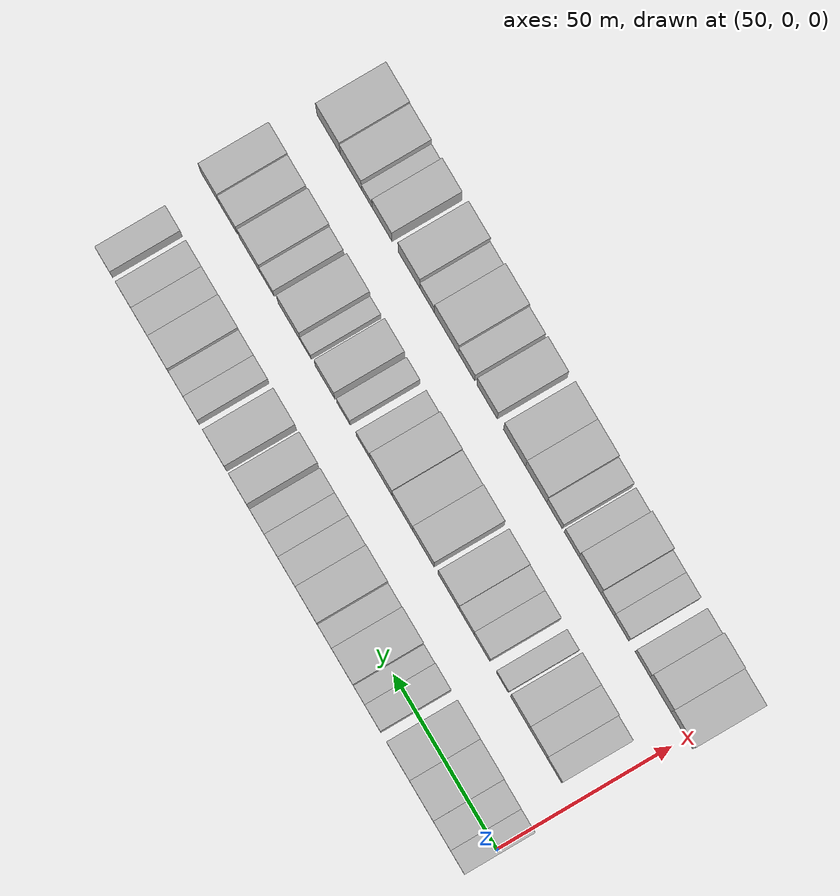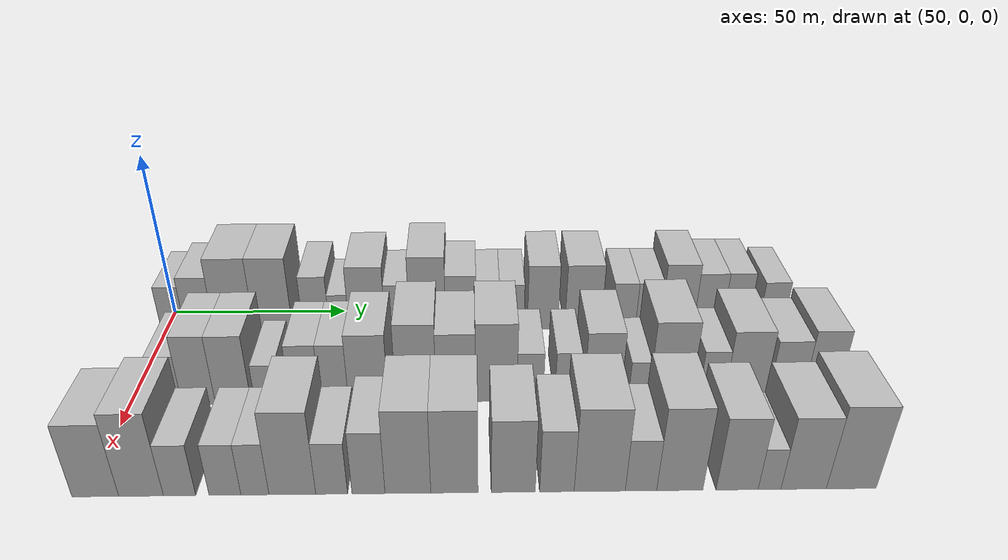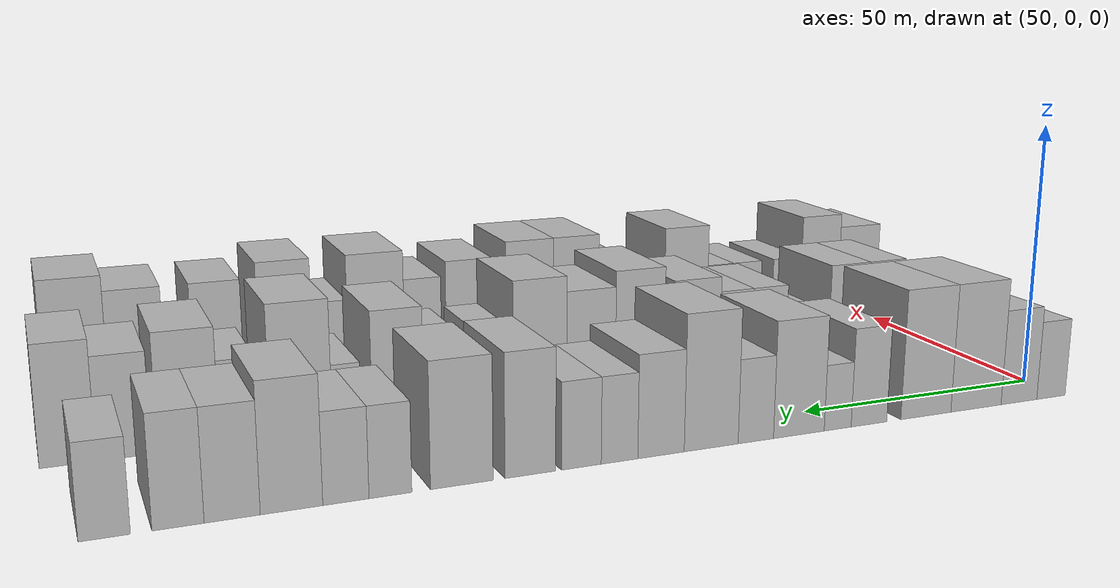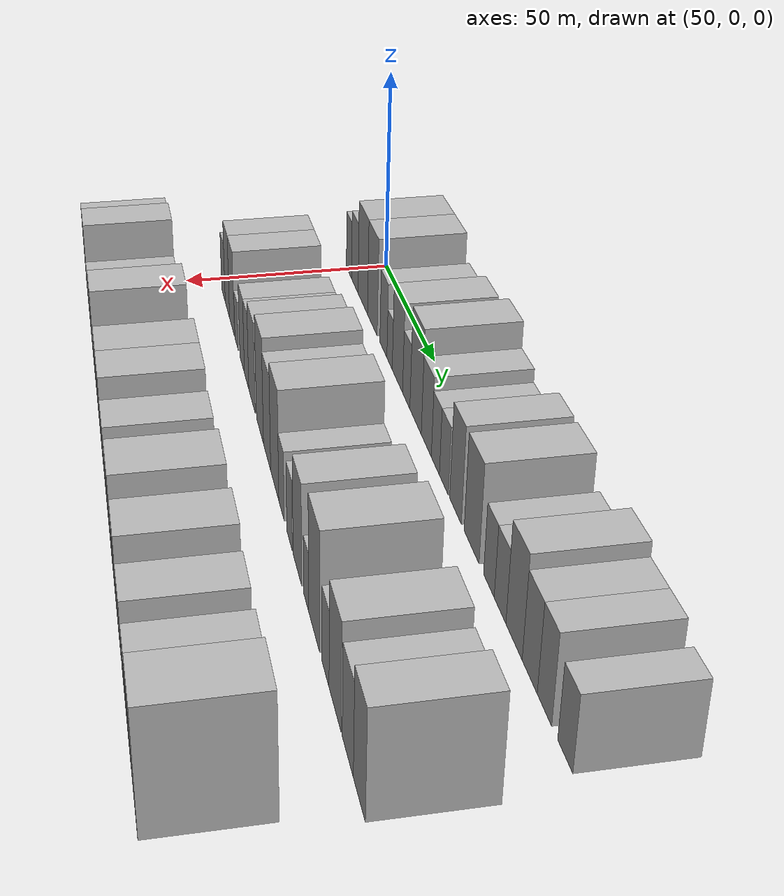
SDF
<sdf version="1.6">
 <world name="default">
  <model name="building_36">
   <static>1</static>
   <pose>50.0000 2.2574 0 0.000000 0.000000 0.000000</pose>
   <link name="link">
    <pose>0 0 7.50 0 0 0</pose>
    <collision name="collision"><geometry><box><size>20.0000 6.7274 15.0000</size></box></geometry></collision>
    <visual name="visual">
     <cast_shadows>0</cast_shadows>
     <geometry><box><size>20.0000 6.7274 15.0000</size></box></geometry>
     <material>
      <script>
       <uri>model://HANNAS_wall/materials/scripts</uri>
       <uri>model://HANNAS_wall/materials/textures</uri>
       <name>vrc/HANNAS_wall</name>
      </script>
     </material>
    </visual>
   </link>
  </model>
  <model name="building_37">
   <static>1</static>
   <pose>50.0000 9.7576 0 0.000000 0.000000 0.000000</pose>
   <link name="link">
    <pose>0 0 9.00 0 0 0</pose>
    <collision name="collision"><geometry><box><size>20.0000 8.2731 18.0000</size></box></geometry></collision>
    <visual name="visual">
     <cast_shadows>0</cast_shadows>
     <geometry><box><size>20.0000 8.2731 18.0000</size></box></geometry>
     <material>
      <script>
       <uri>model://HANNAS_wall/materials/scripts</uri>
       <uri>model://HANNAS_wall/materials/textures</uri>
       <name>vrc/HANNAS_wall</name>
      </script>
     </material>
    </visual>
   </link>
  </model>
  <model name="building_38">
   <static>1</static>
   <pose>50.0000 19.5656 0 0.000000 0.000000 0.000000</pose>
   <link name="link">
    <pose>0 0 12.00 0 0 0</pose>
    <collision name="collision"><geometry><box><size>20.0000 11.3429 24.0000</size></box></geometry></collision>
    <visual name="visual">
     <cast_shadows>0</cast_shadows>
     <geometry><box><size>20.0000 11.3429 24.0000</size></box></geometry>
     <material>
      <script>
       <uri>model://HANNAS_wall/materials/scripts</uri>
       <uri>model://HANNAS_wall/materials/textures</uri>
       <name>vrc/HANNAS_wall</name>
      </script>
     </material>
    </visual>
   </link>
  </model>
  <model name="building_39">
   <static>1</static>
   <pose>50.0000 30.7202 0 0.000000 0.000000 0.000000</pose>
   <link name="link">
    <pose>0 0 12.00 0 0 0</pose>
    <collision name="collision"><geometry><box><size>20.0000 10.9663 24.0000</size></box></geometry></collision>
    <visual name="visual">
     <cast_shadows>0</cast_shadows>
     <geometry><box><size>20.0000 10.9663 24.0000</size></box></geometry>
     <material>
      <script>
       <uri>model://HANNAS_wall/materials/scripts</uri>
       <uri>model://HANNAS_wall/materials/textures</uri>
       <name>vrc/HANNAS_wall</name>
      </script>
     </material>
    </visual>
   </link>
  </model>
  <model name="building_40">
   <static>1</static>
   <pose>50.0000 42.9664 0 0.000000 0.000000 0.000000</pose>
   <link name="link">
    <pose>0 0 9.00 0 0 0</pose>
    <collision name="collision"><geometry><box><size>20.0000 7.5261 18.0000</size></box></geometry></collision>
    <visual name="visual">
     <cast_shadows>0</cast_shadows>
     <geometry><box><size>20.0000 7.5261 18.0000</size></box></geometry>
     <material>
      <script>
       <uri>model://HANNAS_wall/materials/scripts</uri>
       <uri>model://HANNAS_wall/materials/textures</uri>
       <name>vrc/HANNAS_wall</name>
      </script>
     </material>
    </visual>
   </link>
  </model>
  <model name="building_41">
   <static>1</static>
   <pose>50.0000 49.5119 0 0.000000 0.000000 0.000000</pose>
   <link name="link">
    <pose>0 0 6.00 0 0 0</pose>
    <collision name="collision"><geometry><box><size>20.0000 5.5650 12.0000</size></box></geometry></collision>
    <visual name="visual">
     <cast_shadows>0</cast_shadows>
     <geometry><box><size>20.0000 5.5650 12.0000</size></box></geometry>
     <material>
      <script>
       <uri>model://HANNAS_wall/materials/scripts</uri>
       <uri>model://HANNAS_wall/materials/textures</uri>
       <name>vrc/HANNAS_wall</name>
      </script>
     </material>
    </visual>
   </link>
  </model>
  <model name="building_42">
   <static>1</static>
   <pose>50.0000 57.4234 0 0.000000 0.000000 0.000000</pose>
   <link name="link">
    <pose>0 0 10.50 0 0 0</pose>
    <collision name="collision"><geometry><box><size>20.0000 10.2580 21.0000</size></box></geometry></collision>
    <visual name="visual">
     <cast_shadows>0</cast_shadows>
     <geometry><box><size>20.0000 10.2580 21.0000</size></box></geometry>
     <material>
      <script>
       <uri>model://HANNAS_wall/materials/scripts</uri>
       <uri>model://HANNAS_wall/materials/textures</uri>
       <name>vrc/HANNAS_wall</name>
      </script>
     </material>
    </visual>
   </link>
  </model>
  <model name="building_43">
   <static>1</static>
   <pose>50.0000 66.0309 0 0.000000 0.000000 0.000000</pose>
   <link name="link">
    <pose>0 0 7.50 0 0 0</pose>
    <collision name="collision"><geometry><box><size>20.0000 6.9572 15.0000</size></box></geometry></collision>
    <visual name="visual">
     <cast_shadows>0</cast_shadows>
     <geometry><box><size>20.0000 6.9572 15.0000</size></box></geometry>
     <material>
      <script>
       <uri>model://HANNAS_wall/materials/scripts</uri>
       <uri>model://HANNAS_wall/materials/textures</uri>
       <name>vrc/HANNAS_wall</name>
      </script>
     </material>
    </visual>
   </link>
  </model>
  <model name="building_44">
   <static>1</static>
   <pose>50.0000 74.6777 0 0.000000 0.000000 0.000000</pose>
   <link name="link">
    <pose>0 0 12.00 0 0 0</pose>
    <collision name="collision"><geometry><box><size>20.0000 10.3363 24.0000</size></box></geometry></collision>
    <visual name="visual">
     <cast_shadows>0</cast_shadows>
     <geometry><box><size>20.0000 10.3363 24.0000</size></box></geometry>
     <material>
      <script>
       <uri>model://HANNAS_wall/materials/scripts</uri>
       <uri>model://HANNAS_wall/materials/textures</uri>
       <name>vrc/HANNAS_wall</name>
      </script>
     </material>
    </visual>
   </link>
  </model>
  <model name="building_45">
   <static>1</static>
   <pose>50.0000 84.1705 0 0.000000 0.000000 0.000000</pose>
   <link name="link">
    <pose>0 0 9.00 0 0 0</pose>
    <collision name="collision"><geometry><box><size>20.0000 8.6493 18.0000</size></box></geometry></collision>
    <visual name="visual">
     <cast_shadows>0</cast_shadows>
     <geometry><box><size>20.0000 8.6493 18.0000</size></box></geometry>
     <material>
      <script>
       <uri>model://HANNAS_wall/materials/scripts</uri>
       <uri>model://HANNAS_wall/materials/textures</uri>
       <name>vrc/HANNAS_wall</name>
      </script>
     </material>
    </visual>
   </link>
  </model>
  <model name="building_46">
   <static>1</static>
   <pose>50.0000 91.8174 0 0.000000 0.000000 0.000000</pose>
   <link name="link">
    <pose>0 0 7.50 0 0 0</pose>
    <collision name="collision"><geometry><box><size>20.0000 6.6445 15.0000</size></box></geometry></collision>
    <visual name="visual">
     <cast_shadows>0</cast_shadows>
     <geometry><box><size>20.0000 6.6445 15.0000</size></box></geometry>
     <material>
      <script>
       <uri>model://HANNAS_wall/materials/scripts</uri>
       <uri>model://HANNAS_wall/materials/textures</uri>
       <name>vrc/HANNAS_wall</name>
      </script>
     </material>
    </visual>
   </link>
  </model>
  <model name="building_47">
   <static>1</static>
   <pose>50.0000 98.6717 0 0.000000 0.000000 0.000000</pose>
   <link name="link">
    <pose>0 0 7.50 0 0 0</pose>
    <collision name="collision"><geometry><box><size>20.0000 7.0641 15.0000</size></box></geometry></collision>
    <visual name="visual">
     <cast_shadows>0</cast_shadows>
     <geometry><box><size>20.0000 7.0641 15.0000</size></box></geometry>
     <material>
      <script>
       <uri>model://HANNAS_wall/materials/scripts</uri>
       <uri>model://HANNAS_wall/materials/textures</uri>
       <name>vrc/HANNAS_wall</name>
      </script>
     </material>
    </visual>
   </link>
  </model>
  <model name="building_48">
   <static>1</static>
   <pose>50.0000 107.5928 0 0.000000 0.000000 0.000000</pose>
   <link name="link">
    <pose>0 0 10.50 0 0 0</pose>
    <collision name="collision"><geometry><box><size>20.0000 8.7780 21.0000</size></box></geometry></collision>
    <visual name="visual">
     <cast_shadows>0</cast_shadows>
     <geometry><box><size>20.0000 8.7780 21.0000</size></box></geometry>
     <material>
      <script>
       <uri>model://HANNAS_wall/materials/scripts</uri>
       <uri>model://HANNAS_wall/materials/textures</uri>
       <name>vrc/HANNAS_wall</name>
      </script>
     </material>
    </visual>
   </link>
  </model>
  <model name="building_49">
   <static>1</static>
   <pose>50.0000 119.1943 0 0.000000 0.000000 0.000000</pose>
   <link name="link">
    <pose>0 0 10.50 0 0 0</pose>
    <collision name="collision"><geometry><box><size>20.0000 10.4250 21.0000</size></box></geometry></collision>
    <visual name="visual">
     <cast_shadows>0</cast_shadows>
     <geometry><box><size>20.0000 10.4250 21.0000</size></box></geometry>
     <material>
      <script>
       <uri>model://HANNAS_wall/materials/scripts</uri>
       <uri>model://HANNAS_wall/materials/textures</uri>
       <name>vrc/HANNAS_wall</name>
      </script>
     </material>
    </visual>
   </link>
  </model>
  <model name="building_50">
   <static>1</static>
   <pose>50.0000 130.8357 0 0.000000 0.000000 0.000000</pose>
   <link name="link">
    <pose>0 0 7.50 0 0 0</pose>
    <collision name="collision"><geometry><box><size>20.0000 6.8579 15.0000</size></box></geometry></collision>
    <visual name="visual">
     <cast_shadows>0</cast_shadows>
     <geometry><box><size>20.0000 6.8579 15.0000</size></box></geometry>
     <material>
      <script>
       <uri>model://HANNAS_wall/materials/scripts</uri>
       <uri>model://HANNAS_wall/materials/textures</uri>
       <name>vrc/HANNAS_wall</name>
      </script>
     </material>
    </visual>
   </link>
  </model>
  <model name="building_51">
   <static>1</static>
   <pose>50.0000 137.8700 0 0.000000 0.000000 0.000000</pose>
   <link name="link">
    <pose>0 0 7.50 0 0 0</pose>
    <collision name="collision"><geometry><box><size>20.0000 7.2107 15.0000</size></box></geometry></collision>
    <visual name="visual">
     <cast_shadows>0</cast_shadows>
     <geometry><box><size>20.0000 7.2107 15.0000</size></box></geometry>
     <material>
      <script>
       <uri>model://HANNAS_wall/materials/scripts</uri>
       <uri>model://HANNAS_wall/materials/textures</uri>
       <name>vrc/HANNAS_wall</name>
      </script>
     </material>
    </visual>
   </link>
  </model>
  <model name="building_52">
   <static>1</static>
   <pose>50.0000 146.2125 0 0.000000 0.000000 0.000000</pose>
   <link name="link">
    <pose>0 0 10.50 0 0 0</pose>
    <collision name="collision"><geometry><box><size>20.0000 9.4743 21.0000</size></box></geometry></collision>
    <visual name="visual">
     <cast_shadows>0</cast_shadows>
     <geometry><box><size>20.0000 9.4743 21.0000</size></box></geometry>
     <material>
      <script>
       <uri>model://HANNAS_wall/materials/scripts</uri>
       <uri>model://HANNAS_wall/materials/textures</uri>
       <name>vrc/HANNAS_wall</name>
      </script>
     </material>
    </visual>
   </link>
  </model>
  <model name="building_53">
   <static>1</static>
   <pose>50.0000 155.0759 0 0.000000 0.000000 0.000000</pose>
   <link name="link">
    <pose>0 0 9.00 0 0 0</pose>
    <collision name="collision"><geometry><box><size>20.0000 8.2526 18.0000</size></box></geometry></collision>
    <visual name="visual">
     <cast_shadows>0</cast_shadows>
     <geometry><box><size>20.0000 8.2526 18.0000</size></box></geometry>
     <material>
      <script>
       <uri>model://HANNAS_wall/materials/scripts</uri>
       <uri>model://HANNAS_wall/materials/textures</uri>
       <name>vrc/HANNAS_wall</name>
      </script>
     </material>
    </visual>
   </link>
  </model>
  <model name="building_54">
   <static>1</static>
   <pose>50.0000 162.9392 0 0.000000 0.000000 0.000000</pose>
   <link name="link">
    <pose>0 0 9.00 0 0 0</pose>
    <collision name="collision"><geometry><box><size>20.0000 7.4738 18.0000</size></box></geometry></collision>
    <visual name="visual">
     <cast_shadows>0</cast_shadows>
     <geometry><box><size>20.0000 7.4738 18.0000</size></box></geometry>
     <material>
      <script>
       <uri>model://HANNAS_wall/materials/scripts</uri>
       <uri>model://HANNAS_wall/materials/textures</uri>
       <name>vrc/HANNAS_wall</name>
      </script>
     </material>
    </visual>
   </link>
  </model>
  <model name="building_55">
   <static>1</static>
   <pose>50.0000 173.2959 0 0.000000 0.000000 0.000000</pose>
   <link name="link">
    <pose>0 0 7.50 0 0 0</pose>
    <collision name="collision"><geometry><box><size>20.0000 7.2395 15.0000</size></box></geometry></collision>
    <visual name="visual">
     <cast_shadows>0</cast_shadows>
     <geometry><box><size>20.0000 7.2395 15.0000</size></box></geometry>
     <material>
      <script>
       <uri>model://HANNAS_wall/materials/scripts</uri>
       <uri>model://HANNAS_wall/materials/textures</uri>
       <name>vrc/HANNAS_wall</name>
      </script>
     </material>
    </visual>
   </link>
  </model>
  <model name="building_117">
   <static>1</static>
   <pose>82.0000 9.5567 0 0.000000 0.000000 0.000000</pose>
   <link name="link">
    <pose>0 0 7.50 0 0 0</pose>
    <collision name="collision"><geometry><box><size>20.0000 7.0877 15.0000</size></box></geometry></collision>
    <visual name="visual">
     <cast_shadows>0</cast_shadows>
     <geometry><box><size>20.0000 7.0877 15.0000</size></box></geometry>
     <material>
      <script>
       <uri>model://HANNAS_wall/materials/scripts</uri>
       <uri>model://HANNAS_wall/materials/textures</uri>
       <name>vrc/HANNAS_wall</name>
      </script>
     </material>
    </visual>
   </link>
  </model>
  <model name="building_118">
   <static>1</static>
   <pose>82.0000 17.3574 0 0.000000 0.000000 0.000000</pose>
   <link name="link">
    <pose>0 0 10.50 0 0 0</pose>
    <collision name="collision"><geometry><box><size>20.0000 8.5138 21.0000</size></box></geometry></collision>
    <visual name="visual">
     <cast_shadows>0</cast_shadows>
     <geometry><box><size>20.0000 8.5138 21.0000</size></box></geometry>
     <material>
      <script>
       <uri>model://HANNAS_wall/materials/scripts</uri>
       <uri>model://HANNAS_wall/materials/textures</uri>
       <name>vrc/HANNAS_wall</name>
      </script>
     </material>
    </visual>
   </link>
  </model>
  <model name="building_119">
   <static>1</static>
   <pose>82.0000 26.1764 0 0.000000 0.000000 0.000000</pose>
   <link name="link">
    <pose>0 0 10.50 0 0 0</pose>
    <collision name="collision"><geometry><box><size>20.0000 9.1240 21.0000</size></box></geometry></collision>
    <visual name="visual">
     <cast_shadows>0</cast_shadows>
     <geometry><box><size>20.0000 9.1240 21.0000</size></box></geometry>
     <material>
      <script>
       <uri>model://HANNAS_wall/materials/scripts</uri>
       <uri>model://HANNAS_wall/materials/textures</uri>
       <name>vrc/HANNAS_wall</name>
      </script>
     </material>
    </visual>
   </link>
  </model>
  <model name="building_120">
   <static>1</static>
   <pose>82.0000 34.6956 0 0.000000 0.000000 0.000000</pose>
   <link name="link">
    <pose>0 0 6.00 0 0 0</pose>
    <collision name="collision"><geometry><box><size>20.0000 5.9145 12.0000</size></box></geometry></collision>
    <visual name="visual">
     <cast_shadows>0</cast_shadows>
     <geometry><box><size>20.0000 5.9145 12.0000</size></box></geometry>
     <material>
      <script>
       <uri>model://HANNAS_wall/materials/scripts</uri>
       <uri>model://HANNAS_wall/materials/textures</uri>
       <name>vrc/HANNAS_wall</name>
      </script>
     </material>
    </visual>
   </link>
  </model>
  <model name="building_121">
   <static>1</static>
   <pose>82.0000 44.5150 0 0.000000 0.000000 0.000000</pose>
   <link name="link">
    <pose>0 0 9.00 0 0 0</pose>
    <collision name="collision"><geometry><box><size>20.0000 7.7242 18.0000</size></box></geometry></collision>
    <visual name="visual">
     <cast_shadows>0</cast_shadows>
     <geometry><box><size>20.0000 7.7242 18.0000</size></box></geometry>
     <material>
      <script>
       <uri>model://HANNAS_wall/materials/scripts</uri>
       <uri>model://HANNAS_wall/materials/textures</uri>
       <name>vrc/HANNAS_wall</name>
      </script>
     </material>
    </visual>
   </link>
  </model>
  <model name="building_122">
   <static>1</static>
   <pose>82.0000 51.9857 0 0.000000 0.000000 0.000000</pose>
   <link name="link">
    <pose>0 0 9.00 0 0 0</pose>
    <collision name="collision"><geometry><box><size>20.0000 7.2173 18.0000</size></box></geometry></collision>
    <visual name="visual">
     <cast_shadows>0</cast_shadows>
     <geometry><box><size>20.0000 7.2173 18.0000</size></box></geometry>
     <material>
      <script>
       <uri>model://HANNAS_wall/materials/scripts</uri>
       <uri>model://HANNAS_wall/materials/textures</uri>
       <name>vrc/HANNAS_wall</name>
      </script>
     </material>
    </visual>
   </link>
  </model>
  <model name="building_123">
   <static>1</static>
   <pose>82.0000 60.6389 0 0.000000 0.000000 0.000000</pose>
   <link name="link">
    <pose>0 0 10.50 0 0 0</pose>
    <collision name="collision"><geometry><box><size>20.0000 10.0891 21.0000</size></box></geometry></collision>
    <visual name="visual">
     <cast_shadows>0</cast_shadows>
     <geometry><box><size>20.0000 10.0891 21.0000</size></box></geometry>
     <material>
      <script>
       <uri>model://HANNAS_wall/materials/scripts</uri>
       <uri>model://HANNAS_wall/materials/textures</uri>
       <name>vrc/HANNAS_wall</name>
      </script>
     </material>
    </visual>
   </link>
  </model>
  <model name="building_124">
   <static>1</static>
   <pose>82.0000 72.8171 0 0.000000 0.000000 0.000000</pose>
   <link name="link">
    <pose>0 0 12.00 0 0 0</pose>
    <collision name="collision"><geometry><box><size>20.0000 10.2672 24.0000</size></box></geometry></collision>
    <visual name="visual">
     <cast_shadows>0</cast_shadows>
     <geometry><box><size>20.0000 10.2672 24.0000</size></box></geometry>
     <material>
      <script>
       <uri>model://HANNAS_wall/materials/scripts</uri>
       <uri>model://HANNAS_wall/materials/textures</uri>
       <name>vrc/HANNAS_wall</name>
      </script>
     </material>
    </visual>
   </link>
  </model>
  <model name="building_125">
   <static>1</static>
   <pose>82.0000 82.9547 0 0.000000 0.000000 0.000000</pose>
   <link name="link">
    <pose>0 0 10.50 0 0 0</pose>
    <collision name="collision"><geometry><box><size>20.0000 10.0079 21.0000</size></box></geometry></collision>
    <visual name="visual">
     <cast_shadows>0</cast_shadows>
     <geometry><box><size>20.0000 10.0079 21.0000</size></box></geometry>
     <material>
      <script>
       <uri>model://HANNAS_wall/materials/scripts</uri>
       <uri>model://HANNAS_wall/materials/textures</uri>
       <name>vrc/HANNAS_wall</name>
      </script>
     </material>
    </visual>
   </link>
  </model>
  <model name="building_126">
   <static>1</static>
   <pose>82.0000 93.2808 0 0.000000 0.000000 0.000000</pose>
   <link name="link">
    <pose>0 0 12.00 0 0 0</pose>
    <collision name="collision"><geometry><box><size>20.0000 10.6443 24.0000</size></box></geometry></collision>
    <visual name="visual">
     <cast_shadows>0</cast_shadows>
     <geometry><box><size>20.0000 10.6443 24.0000</size></box></geometry>
     <material>
      <script>
       <uri>model://HANNAS_wall/materials/scripts</uri>
       <uri>model://HANNAS_wall/materials/textures</uri>
       <name>vrc/HANNAS_wall</name>
      </script>
     </material>
    </visual>
   </link>
  </model>
  <model name="building_127">
   <static>1</static>
   <pose>82.0000 101.9803 0 0.000000 0.000000 0.000000</pose>
   <link name="link">
    <pose>0 0 7.50 0 0 0</pose>
    <collision name="collision"><geometry><box><size>20.0000 6.7547 15.0000</size></box></geometry></collision>
    <visual name="visual">
     <cast_shadows>0</cast_shadows>
     <geometry><box><size>20.0000 6.7547 15.0000</size></box></geometry>
     <material>
      <script>
       <uri>model://HANNAS_wall/materials/scripts</uri>
       <uri>model://HANNAS_wall/materials/textures</uri>
       <name>vrc/HANNAS_wall</name>
      </script>
     </material>
    </visual>
   </link>
  </model>
  <model name="building_128">
   <static>1</static>
   <pose>82.0000 111.5706 0 0.000000 0.000000 0.000000</pose>
   <link name="link">
    <pose>0 0 7.50 0 0 0</pose>
    <collision name="collision"><geometry><box><size>20.0000 6.4258 15.0000</size></box></geometry></collision>
    <visual name="visual">
     <cast_shadows>0</cast_shadows>
     <geometry><box><size>20.0000 6.4258 15.0000</size></box></geometry>
     <material>
      <script>
       <uri>model://HANNAS_wall/materials/scripts</uri>
       <uri>model://HANNAS_wall/materials/textures</uri>
       <name>vrc/HANNAS_wall</name>
      </script>
     </material>
    </visual>
   </link>
  </model>
  <model name="building_129">
   <static>1</static>
   <pose>82.0000 120.5264 0 0.000000 0.000000 0.000000</pose>
   <link name="link">
    <pose>0 0 10.50 0 0 0</pose>
    <collision name="collision"><geometry><box><size>20.0000 9.4859 21.0000</size></box></geometry></collision>
    <visual name="visual">
     <cast_shadows>0</cast_shadows>
     <geometry><box><size>20.0000 9.4859 21.0000</size></box></geometry>
     <material>
      <script>
       <uri>model://HANNAS_wall/materials/scripts</uri>
       <uri>model://HANNAS_wall/materials/textures</uri>
       <name>vrc/HANNAS_wall</name>
      </script>
     </material>
    </visual>
   </link>
  </model>
  <model name="building_130">
   <static>1</static>
   <pose>82.0000 129.8745 0 0.000000 0.000000 0.000000</pose>
   <link name="link">
    <pose>0 0 6.00 0 0 0</pose>
    <collision name="collision"><geometry><box><size>20.0000 5.2103 12.0000</size></box></geometry></collision>
    <visual name="visual">
     <cast_shadows>0</cast_shadows>
     <geometry><box><size>20.0000 5.2103 12.0000</size></box></geometry>
     <material>
      <script>
       <uri>model://HANNAS_wall/materials/scripts</uri>
       <uri>model://HANNAS_wall/materials/textures</uri>
       <name>vrc/HANNAS_wall</name>
      </script>
     </material>
    </visual>
   </link>
  </model>
  <model name="building_131">
   <static>1</static>
   <pose>82.0000 137.9131 0 0.000000 0.000000 0.000000</pose>
   <link name="link">
    <pose>0 0 12.00 0 0 0</pose>
    <collision name="collision"><geometry><box><size>20.0000 10.8669 24.0000</size></box></geometry></collision>
    <visual name="visual">
     <cast_shadows>0</cast_shadows>
     <geometry><box><size>20.0000 10.8669 24.0000</size></box></geometry>
     <material>
      <script>
       <uri>model://HANNAS_wall/materials/scripts</uri>
       <uri>model://HANNAS_wall/materials/textures</uri>
       <name>vrc/HANNAS_wall</name>
      </script>
     </material>
    </visual>
   </link>
  </model>
  <model name="building_132">
   <static>1</static>
   <pose>82.0000 148.6790 0 0.000000 0.000000 0.000000</pose>
   <link name="link">
    <pose>0 0 7.50 0 0 0</pose>
    <collision name="collision"><geometry><box><size>20.0000 6.6649 15.0000</size></box></geometry></collision>
    <visual name="visual">
     <cast_shadows>0</cast_shadows>
     <geometry><box><size>20.0000 6.6649 15.0000</size></box></geometry>
     <material>
      <script>
       <uri>model://HANNAS_wall/materials/scripts</uri>
       <uri>model://HANNAS_wall/materials/textures</uri>
       <name>vrc/HANNAS_wall</name>
      </script>
     </material>
    </visual>
   </link>
  </model>
  <model name="building_133">
   <static>1</static>
   <pose>82.0000 157.1454 0 0.000000 0.000000 0.000000</pose>
   <link name="link">
    <pose>0 0 10.50 0 0 0</pose>
    <collision name="collision"><geometry><box><size>20.0000 10.2679 21.0000</size></box></geometry></collision>
    <visual name="visual">
     <cast_shadows>0</cast_shadows>
     <geometry><box><size>20.0000 10.2679 21.0000</size></box></geometry>
     <material>
      <script>
       <uri>model://HANNAS_wall/materials/scripts</uri>
       <uri>model://HANNAS_wall/materials/textures</uri>
       <name>vrc/HANNAS_wall</name>
      </script>
     </material>
    </visual>
   </link>
  </model>
  <model name="building_134">
   <static>1</static>
   <pose>82.0000 167.7029 0 0.000000 0.000000 0.000000</pose>
   <link name="link">
    <pose>0 0 9.00 0 0 0</pose>
    <collision name="collision"><geometry><box><size>20.0000 8.8473 18.0000</size></box></geometry></collision>
    <visual name="visual">
     <cast_shadows>0</cast_shadows>
     <geometry><box><size>20.0000 8.8473 18.0000</size></box></geometry>
     <material>
      <script>
       <uri>model://HANNAS_wall/materials/scripts</uri>
       <uri>model://HANNAS_wall/materials/textures</uri>
       <name>vrc/HANNAS_wall</name>
      </script>
     </material>
    </visual>
   </link>
  </model>
  <model name="building_135">
   <static>1</static>
   <pose>82.0000 176.5846 0 0.000000 0.000000 0.000000</pose>
   <link name="link">
    <pose>0 0 10.50 0 0 0</pose>
    <collision name="collision"><geometry><box><size>20.0000 8.9161 21.0000</size></box></geometry></collision>
    <visual name="visual">
     <cast_shadows>0</cast_shadows>
     <geometry><box><size>20.0000 8.9161 21.0000</size></box></geometry>
     <material>
      <script>
       <uri>model://HANNAS_wall/materials/scripts</uri>
       <uri>model://HANNAS_wall/materials/textures</uri>
       <name>vrc/HANNAS_wall</name>
      </script>
     </material>
    </visual>
   </link>
  </model>
  <model name="building_194">
   <static>1</static>
   <pose>114.0000 2.1087 0 0.000000 0.000000 0.000000</pose>
   <link name="link">
    <pose>0 0 10.50 0 0 0</pose>
    <collision name="collision"><geometry><box><size>20.0000 10.4810 21.0000</size></box></geometry></collision>
    <visual name="visual">
     <cast_shadows>0</cast_shadows>
     <geometry><box><size>20.0000 10.4810 21.0000</size></box></geometry>
     <material>
      <script>
       <uri>model://HANNAS_wall/materials/scripts</uri>
       <uri>model://HANNAS_wall/materials/textures</uri>
       <name>vrc/HANNAS_wall</name>
      </script>
     </material>
    </visual>
   </link>
  </model>
  <model name="building_195">
   <static>1</static>
   <pose>114.0000 12.3637 0 0.000000 0.000000 0.000000</pose>
   <link name="link">
    <pose>0 0 12.00 0 0 0</pose>
    <collision name="collision"><geometry><box><size>20.0000 10.0290 24.0000</size></box></geometry></collision>
    <visual name="visual">
     <cast_shadows>0</cast_shadows>
     <geometry><box><size>20.0000 10.0290 24.0000</size></box></geometry>
     <material>
      <script>
       <uri>model://HANNAS_wall/materials/scripts</uri>
       <uri>model://HANNAS_wall/materials/textures</uri>
       <name>vrc/HANNAS_wall</name>
      </script>
     </material>
    </visual>
   </link>
  </model>
  <model name="building_196">
   <static>1</static>
   <pose>114.0000 21.0011 0 0.000000 0.000000 0.000000</pose>
   <link name="link">
    <pose>0 0 7.50 0 0 0</pose>
    <collision name="collision"><geometry><box><size>20.0000 7.2458 15.0000</size></box></geometry></collision>
    <visual name="visual">
     <cast_shadows>0</cast_shadows>
     <geometry><box><size>20.0000 7.2458 15.0000</size></box></geometry>
     <material>
      <script>
       <uri>model://HANNAS_wall/materials/scripts</uri>
       <uri>model://HANNAS_wall/materials/textures</uri>
       <name>vrc/HANNAS_wall</name>
      </script>
     </material>
    </visual>
   </link>
  </model>
  <model name="building_197">
   <static>1</static>
   <pose>114.0000 31.2023 0 0.000000 0.000000 0.000000</pose>
   <link name="link">
    <pose>0 0 7.50 0 0 0</pose>
    <collision name="collision"><geometry><box><size>20.0000 7.1567 15.0000</size></box></geometry></collision>
    <visual name="visual">
     <cast_shadows>0</cast_shadows>
     <geometry><box><size>20.0000 7.1567 15.0000</size></box></geometry>
     <material>
      <script>
       <uri>model://HANNAS_wall/materials/scripts</uri>
       <uri>model://HANNAS_wall/materials/textures</uri>
       <name>vrc/HANNAS_wall</name>
      </script>
     </material>
    </visual>
   </link>
  </model>
  <model name="building_198">
   <static>1</static>
   <pose>114.0000 37.9415 0 0.000000 0.000000 0.000000</pose>
   <link name="link">
    <pose>0 0 7.50 0 0 0</pose>
    <collision name="collision"><geometry><box><size>20.0000 6.3217 15.0000</size></box></geometry></collision>
    <visual name="visual">
     <cast_shadows>0</cast_shadows>
     <geometry><box><size>20.0000 6.3217 15.0000</size></box></geometry>
     <material>
      <script>
       <uri>model://HANNAS_wall/materials/scripts</uri>
       <uri>model://HANNAS_wall/materials/textures</uri>
       <name>vrc/HANNAS_wall</name>
      </script>
     </material>
    </visual>
   </link>
  </model>
  <model name="building_199">
   <static>1</static>
   <pose>114.0000 46.3687 0 0.000000 0.000000 0.000000</pose>
   <link name="link">
    <pose>0 0 12.00 0 0 0</pose>
    <collision name="collision"><geometry><box><size>20.0000 10.5328 24.0000</size></box></geometry></collision>
    <visual name="visual">
     <cast_shadows>0</cast_shadows>
     <geometry><box><size>20.0000 10.5328 24.0000</size></box></geometry>
     <material>
      <script>
       <uri>model://HANNAS_wall/materials/scripts</uri>
       <uri>model://HANNAS_wall/materials/textures</uri>
       <name>vrc/HANNAS_wall</name>
      </script>
     </material>
    </visual>
   </link>
  </model>
  <model name="building_200">
   <static>1</static>
   <pose>114.0000 55.2211 0 0.000000 0.000000 0.000000</pose>
   <link name="link">
    <pose>0 0 7.50 0 0 0</pose>
    <collision name="collision"><geometry><box><size>20.0000 7.1719 15.0000</size></box></geometry></collision>
    <visual name="visual">
     <cast_shadows>0</cast_shadows>
     <geometry><box><size>20.0000 7.1719 15.0000</size></box></geometry>
     <material>
      <script>
       <uri>model://HANNAS_wall/materials/scripts</uri>
       <uri>model://HANNAS_wall/materials/textures</uri>
       <name>vrc/HANNAS_wall</name>
      </script>
     </material>
    </visual>
   </link>
  </model>
  <model name="building_201">
   <static>1</static>
   <pose>114.0000 63.5273 0 0.000000 0.000000 0.000000</pose>
   <link name="link">
    <pose>0 0 9.00 0 0 0</pose>
    <collision name="collision"><geometry><box><size>20.0000 7.4405 18.0000</size></box></geometry></collision>
    <visual name="visual">
     <cast_shadows>0</cast_shadows>
     <geometry><box><size>20.0000 7.4405 18.0000</size></box></geometry>
     <material>
      <script>
       <uri>model://HANNAS_wall/materials/scripts</uri>
       <uri>model://HANNAS_wall/materials/textures</uri>
       <name>vrc/HANNAS_wall</name>
      </script>
     </material>
    </visual>
   </link>
  </model>
  <model name="building_202">
   <static>1</static>
   <pose>114.0000 72.4119 0 0.000000 0.000000 0.000000</pose>
   <link name="link">
    <pose>0 0 12.00 0 0 0</pose>
    <collision name="collision"><geometry><box><size>20.0000 10.3289 24.0000</size></box></geometry></collision>
    <visual name="visual">
     <cast_shadows>0</cast_shadows>
     <geometry><box><size>20.0000 10.3289 24.0000</size></box></geometry>
     <material>
      <script>
       <uri>model://HANNAS_wall/materials/scripts</uri>
       <uri>model://HANNAS_wall/materials/textures</uri>
       <name>vrc/HANNAS_wall</name>
      </script>
     </material>
    </visual>
   </link>
  </model>
  <model name="building_203">
   <static>1</static>
   <pose>114.0000 82.9158 0 0.000000 0.000000 0.000000</pose>
   <link name="link">
    <pose>0 0 12.00 0 0 0</pose>
    <collision name="collision"><geometry><box><size>20.0000 10.6788 24.0000</size></box></geometry></collision>
    <visual name="visual">
     <cast_shadows>0</cast_shadows>
     <geometry><box><size>20.0000 10.6788 24.0000</size></box></geometry>
     <material>
      <script>
       <uri>model://HANNAS_wall/materials/scripts</uri>
       <uri>model://HANNAS_wall/materials/textures</uri>
       <name>vrc/HANNAS_wall</name>
      </script>
     </material>
    </visual>
   </link>
  </model>
  <model name="building_204">
   <static>1</static>
   <pose>114.0000 96.2404 0 0.000000 0.000000 0.000000</pose>
   <link name="link">
    <pose>0 0 10.50 0 0 0</pose>
    <collision name="collision"><geometry><box><size>20.0000 9.9706 21.0000</size></box></geometry></collision>
    <visual name="visual">
     <cast_shadows>0</cast_shadows>
     <geometry><box><size>20.0000 9.9706 21.0000</size></box></geometry>
     <material>
      <script>
       <uri>model://HANNAS_wall/materials/scripts</uri>
       <uri>model://HANNAS_wall/materials/textures</uri>
       <name>vrc/HANNAS_wall</name>
      </script>
     </material>
    </visual>
   </link>
  </model>
  <model name="building_205">
   <static>1</static>
   <pose>114.0000 106.1371 0 0.000000 0.000000 0.000000</pose>
   <link name="link">
    <pose>0 0 9.00 0 0 0</pose>
    <collision name="collision"><geometry><box><size>20.0000 7.8226 18.0000</size></box></geometry></collision>
    <visual name="visual">
     <cast_shadows>0</cast_shadows>
     <geometry><box><size>20.0000 7.8226 18.0000</size></box></geometry>
     <material>
      <script>
       <uri>model://HANNAS_wall/materials/scripts</uri>
       <uri>model://HANNAS_wall/materials/textures</uri>
       <name>vrc/HANNAS_wall</name>
      </script>
     </material>
    </visual>
   </link>
  </model>
  <model name="building_206">
   <static>1</static>
   <pose>114.0000 115.8558 0 0.000000 0.000000 0.000000</pose>
   <link name="link">
    <pose>0 0 12.00 0 0 0</pose>
    <collision name="collision"><geometry><box><size>20.0000 11.6149 24.0000</size></box></geometry></collision>
    <visual name="visual">
     <cast_shadows>0</cast_shadows>
     <geometry><box><size>20.0000 11.6149 24.0000</size></box></geometry>
     <material>
      <script>
       <uri>model://HANNAS_wall/materials/scripts</uri>
       <uri>model://HANNAS_wall/materials/textures</uri>
       <name>vrc/HANNAS_wall</name>
      </script>
     </material>
    </visual>
   </link>
  </model>
  <model name="building_207">
   <static>1</static>
   <pose>114.0000 125.2338 0 0.000000 0.000000 0.000000</pose>
   <link name="link">
    <pose>0 0 7.50 0 0 0</pose>
    <collision name="collision"><geometry><box><size>20.0000 7.1411 15.0000</size></box></geometry></collision>
    <visual name="visual">
     <cast_shadows>0</cast_shadows>
     <geometry><box><size>20.0000 7.1411 15.0000</size></box></geometry>
     <material>
      <script>
       <uri>model://HANNAS_wall/materials/scripts</uri>
       <uri>model://HANNAS_wall/materials/textures</uri>
       <name>vrc/HANNAS_wall</name>
      </script>
     </material>
    </visual>
   </link>
  </model>
  <model name="building_208">
   <static>1</static>
   <pose>114.0000 134.0623 0 0.000000 0.000000 0.000000</pose>
   <link name="link">
    <pose>0 0 12.00 0 0 0</pose>
    <collision name="collision"><geometry><box><size>20.0000 10.5159 24.0000</size></box></geometry></collision>
    <visual name="visual">
     <cast_shadows>0</cast_shadows>
     <geometry><box><size>20.0000 10.5159 24.0000</size></box></geometry>
     <material>
      <script>
       <uri>model://HANNAS_wall/materials/scripts</uri>
       <uri>model://HANNAS_wall/materials/textures</uri>
       <name>vrc/HANNAS_wall</name>
      </script>
     </material>
    </visual>
   </link>
  </model>
  <model name="building_209">
   <static>1</static>
   <pose>114.0000 147.1187 0 0.000000 0.000000 0.000000</pose>
   <link name="link">
    <pose>0 0 10.50 0 0 0</pose>
    <collision name="collision"><geometry><box><size>20.0000 9.5969 21.0000</size></box></geometry></collision>
    <visual name="visual">
     <cast_shadows>0</cast_shadows>
     <geometry><box><size>20.0000 9.5969 21.0000</size></box></geometry>
     <material>
      <script>
       <uri>model://HANNAS_wall/materials/scripts</uri>
       <uri>model://HANNAS_wall/materials/textures</uri>
       <name>vrc/HANNAS_wall</name>
      </script>
     </material>
    </visual>
   </link>
  </model>
  <model name="building_210">
   <static>1</static>
   <pose>114.0000 154.5143 0 0.000000 0.000000 0.000000</pose>
   <link name="link">
    <pose>0 0 6.00 0 0 0</pose>
    <collision name="collision"><geometry><box><size>20.0000 5.1942 12.0000</size></box></geometry></collision>
    <visual name="visual">
     <cast_shadows>0</cast_shadows>
     <geometry><box><size>20.0000 5.1942 12.0000</size></box></geometry>
     <material>
      <script>
       <uri>model://HANNAS_wall/materials/scripts</uri>
       <uri>model://HANNAS_wall/materials/textures</uri>
       <name>vrc/HANNAS_wall</name>
      </script>
     </material>
    </visual>
   </link>
  </model>
  <model name="building_211">
   <static>1</static>
   <pose>114.0000 162.3036 0 0.000000 0.000000 0.000000</pose>
   <link name="link">
    <pose>0 0 10.50 0 0 0</pose>
    <collision name="collision"><geometry><box><size>20.0000 10.3845 21.0000</size></box></geometry></collision>
    <visual name="visual">
     <cast_shadows>0</cast_shadows>
     <geometry><box><size>20.0000 10.3845 21.0000</size></box></geometry>
     <material>
      <script>
       <uri>model://HANNAS_wall/materials/scripts</uri>
       <uri>model://HANNAS_wall/materials/textures</uri>
       <name>vrc/HANNAS_wall</name>
      </script>
     </material>
    </visual>
   </link>
  </model>
  <model name="building_212">
   <static>1</static>
   <pose>114.0000 173.1913 0 0.000000 0.000000 0.000000</pose>
   <link name="link">
    <pose>0 0 12.00 0 0 0</pose>
    <collision name="collision"><geometry><box><size>20.0000 11.3910 24.0000</size></box></geometry></collision>
    <visual name="visual">
     <cast_shadows>0</cast_shadows>
     <geometry><box><size>20.0000 11.3910 24.0000</size></box></geometry>
     <material>
      <script>
       <uri>model://HANNAS_wall/materials/scripts</uri>
       <uri>model://HANNAS_wall/materials/textures</uri>
       <name>vrc/HANNAS_wall</name>
      </script>
     </material>
    </visual>
   </link>
  </model>
 </world>
</sdf>
